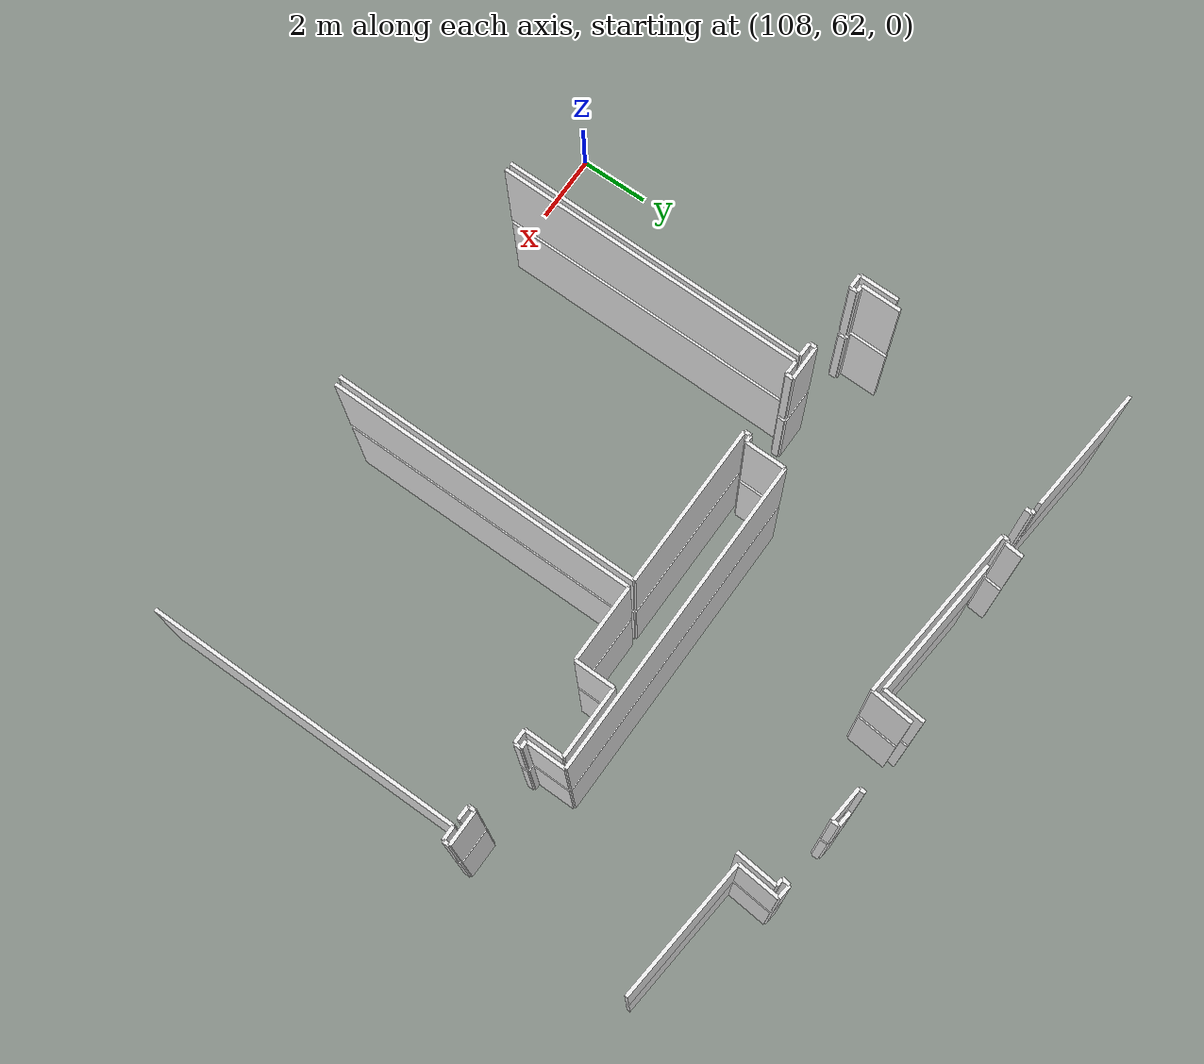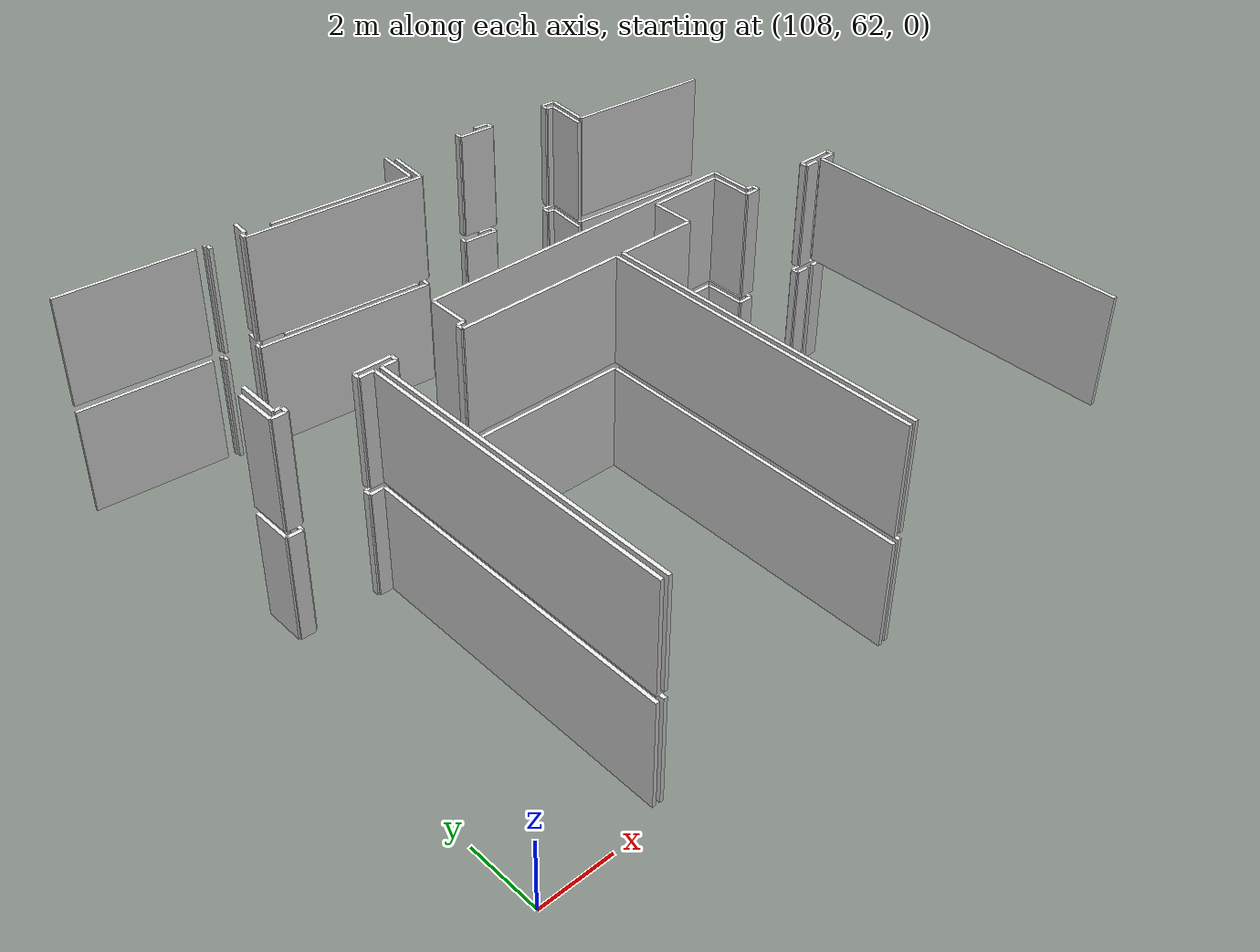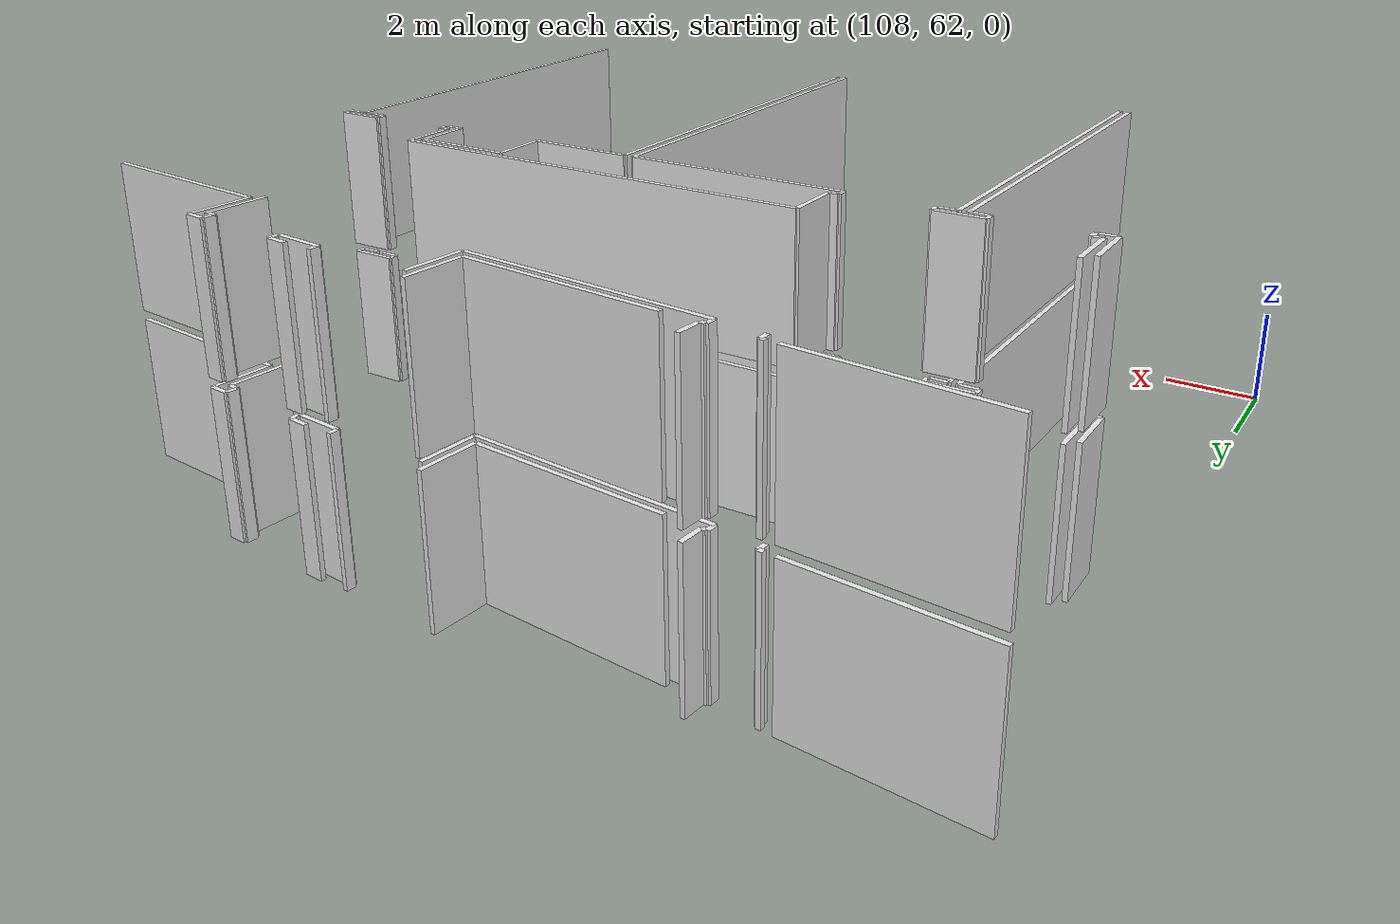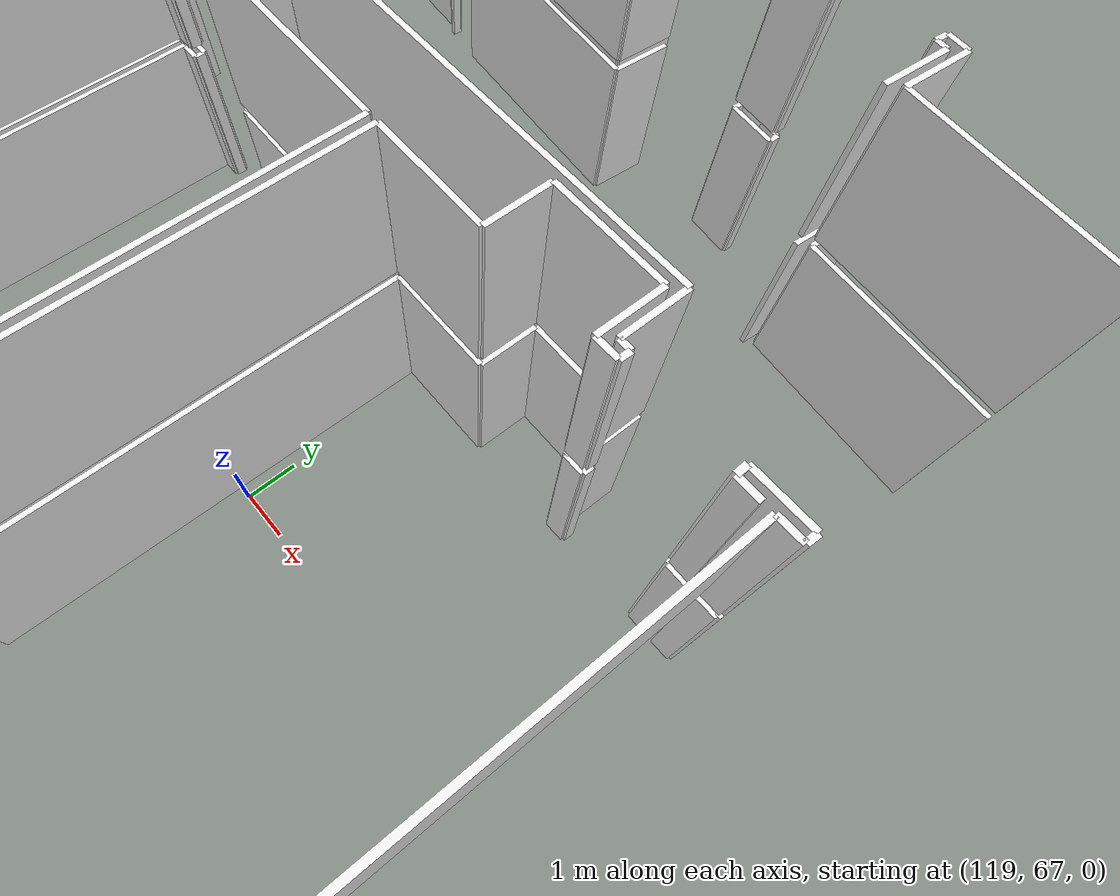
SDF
<sdf version="1.6">
 <world name="default">
  <model name="wall_111.7_78.0_0.0_link">
   <static>true</static>
   <pose>111.6699999999837 77.97500000009313 1.5 0 0 -0.09966865030117082</pose>
   <link name="link">
    <visual name="visual">
     <geometry><box><size>0.10049875616580058 0.1 3</size></box></geometry>
     <material>
      <script><uri>file://media/materials/scripts/gazebo.material</uri><name>Gazebo/White</name></script>
     </material>
    </visual>
   </link>
  </model>
  <model name="wall_112.7_77.9_0.0_link">
   <static>true</static>
   <pose>112.6699999999837 77.875 1.5 0 0 -0.09966865030117082</pose>
   <link name="link">
    <visual name="visual">
     <geometry><box><size>0.10049875616580058 0.1 3</size></box></geometry>
     <material>
      <script><uri>file://media/materials/scripts/gazebo.material</uri><name>Gazebo/White</name></script>
     </material>
    </visual>
   </link>
  </model>
  <model name="wall_112.7_78.1_0.0_link">
   <static>true</static>
   <pose>112.74499999999534 78.12000000011176 1.5 0 0 1.4711276742115245</pose>
   <link name="link">
    <visual name="visual">
     <geometry><box><size>0.502493781060678 0.1 3</size></box></geometry>
     <material>
      <script><uri>file://media/materials/scripts/gazebo.material</uri><name>Gazebo/White</name></script>
     </material>
    </visual>
   </link>
  </model>
  <model name="wall_109.6_78.2_0.0_link">
   <static>true</static>
   <pose>109.61999999999534 78.17999999993481 1.5 0 0 -0.1002217497450038</pose>
   <link name="link">
    <visual name="visual">
     <geometry><box><size>3.5980550300969623 0.1 3</size></box></geometry>
     <material>
      <script><uri>file://media/materials/scripts/gazebo.material</uri><name>Gazebo/White</name></script>
     </material>
    </visual>
   </link>
  </model>
  <model name="wall_120.4_78.3_0.0_link">
   <static>true</static>
   <pose>120.44000000000233 78.31999999983236 1.5 0 0 -0.09966865257760905</pose>
   <link name="link">
    <visual name="visual">
     <geometry><box><size>0.40199502487170996 0.1 3</size></box></geometry>
     <material>
      <script><uri>file://media/materials/scripts/gazebo.material</uri><name>Gazebo/White</name></script>
     </material>
    </visual>
   </link>
  </model>
  <model name="wall_122.6_78.1_0.0_link">
   <static>true</static>
   <pose>122.63500000000931 78.10000000009313 1.5 0 0 -0.10220671819814384</pose>
   <link name="link">
    <visual name="visual">
     <geometry><box><size>0.392045915695951 0.1 3</size></box></geometry>
     <material>
      <script><uri>file://media/materials/scripts/gazebo.material</uri><name>Gazebo/White</name></script>
     </material>
    </visual>
   </link>
  </model>
  <model name="wall_122.8_77.5_0.0_link">
   <static>true</static>
   <pose>122.77000000001863 77.47500000009313 1.5 0 0 -1.6696466488623756</pose>
   <link name="link">
    <visual name="visual">
     <geometry><box><size>1.2159358535337013 0.1 3</size></box></geometry>
     <material>
      <script><uri>file://media/materials/scripts/gazebo.material</uri><name>Gazebo/White</name></script>
     </material>
    </visual>
   </link>
  </model>
  <model name="wall_124.7_76.7_0.0_link">
   <static>true</static>
   <pose>124.68000000002212 76.67000000015832 1.5 0 0 -0.10117618901410476</pose>
   <link name="link">
    <visual name="visual">
     <geometry><box><size>3.9602525171943066 0.1 3</size></box></geometry>
     <material>
      <script><uri>file://media/materials/scripts/gazebo.material</uri><name>Gazebo/White</name></script>
     </material>
    </visual>
   </link>
  </model>
  <model name="wall_115.4_77.6_0.0_link">
   <static>true</static>
   <pose>115.38499999998021 77.5999999998603 1.5 0 0 -0.10092178464365997</pose>
   <link name="link">
    <visual name="visual">
     <geometry><box><size>3.9702015062232627 0.1 3</size></box></geometry>
     <material>
      <script><uri>file://media/materials/scripts/gazebo.material</uri><name>Gazebo/White</name></script>
     </material>
    </visual>
   </link>
  </model>
  <model name="wall_117.4_78.0_0.0_link">
   <static>true</static>
   <pose>117.4199999999837 78.00499999988824 1.5 0 0 1.4719460047274175</pose>
   <link name="link">
    <visual name="visual">
     <geometry><box><size>1.2159358535337013 0.1 3</size></box></geometry>
     <material>
      <script><uri>file://media/materials/scripts/gazebo.material</uri><name>Gazebo/White</name></script>
     </material>
    </visual>
   </link>
  </model>
  <model name="wall_122.6_77.3_0.0_link">
   <static>true</static>
   <pose>122.55999999999767 77.28499999991618 1.5 0 0 1.470295727739453</pose>
   <link name="link">
    <visual name="visual">
     <geometry><box><size>1.1960351164852516 0.1 3</size></box></geometry>
     <material>
      <script><uri>file://media/materials/scripts/gazebo.material</uri><name>Gazebo/White</name></script>
     </material>
    </visual>
   </link>
  </model>
  <model name="wall_122.5_77.9_0.0_link">
   <static>true</static>
   <pose>122.51499999998487 77.88999999989755 1.5 0 0 3.0466409471685547</pose>
   <link name="link">
    <visual name="visual">
     <geometry><box><size>0.21095023111991618 0.1 3</size></box></geometry>
     <material>
      <script><uri>file://media/materials/scripts/gazebo.material</uri><name>Gazebo/White</name></script>
     </material>
    </visual>
   </link>
  </model>
  <model name="wall_122.4_78.0_0.0_link">
   <static>true</static>
   <pose>122.42499999998836 78.01000000000931 1.5 0 0 1.4352686128093959</pose>
   <link name="link">
    <visual name="visual">
     <geometry><box><size>0.22203603331853233 0.1 3</size></box></geometry>
     <material>
      <script><uri>file://media/materials/scripts/gazebo.material</uri><name>Gazebo/White</name></script>
     </material>
    </visual>
   </link>
  </model>
  <model name="wall_120.6_78.2_0.0_link">
   <static>true</static>
   <pose>120.64000000001397 78.19999999995343 1.5 0 0 -1.5707963267948966</pose>
   <link name="link">
    <visual name="visual">
     <geometry><box><size>0.19999999972060323 0.1 3</size></box></geometry>
     <material>
      <script><uri>file://media/materials/scripts/gazebo.material</uri><name>Gazebo/White</name></script>
     </material>
    </visual>
   </link>
  </model>
  <model name="wall_120.1_78.2_0.0_link">
   <static>true</static>
   <pose>120.14500000001863 78.1500000001397 1.5 0 0 3.040924001337901</pose>
   <link name="link">
    <visual name="visual">
     <geometry><box><size>0.9950376877285535 0.1 3</size></box></geometry>
     <material>
      <script><uri>file://media/materials/scripts/gazebo.material</uri><name>Gazebo/White</name></script>
     </material>
    </visual>
   </link>
  </model>
  <model name="wall_119.7_78.3_0.0_link">
   <static>true</static>
   <pose>119.66000000000349 78.29500000015832 1.5 0 0 1.4659193882400832</pose>
   <link name="link">
    <visual name="visual">
     <geometry><box><size>0.19104973168571213 0.1 3</size></box></geometry>
     <material>
      <script><uri>file://media/materials/scripts/gazebo.material</uri><name>Gazebo/White</name></script>
     </material>
    </visual>
   </link>
  </model>
  <model name="wall_117.6_77.8_0.0_link">
   <static>true</static>
   <pose>117.59999999997672 77.78499999991618 1.5 0 0 -1.6712969258503403</pose>
   <link name="link">
    <visual name="visual">
     <geometry><box><size>1.1960351164852516 0.1 3</size></box></geometry>
     <material>
      <script><uri>file://media/materials/scripts/gazebo.material</uri><name>Gazebo/White</name></script>
     </material>
    </visual>
   </link>
  </model>
  <model name="wall_115.1_77.4_0.0_link">
   <static>true</static>
   <pose>115.06999999997788 77.43999999994412 1.5 0 0 3.0407215968685284</pose>
   <link name="link">
    <visual name="visual">
     <geometry><box><size>4.965239168461375 0.1 3</size></box></geometry>
     <material>
      <script><uri>file://media/materials/scripts/gazebo.material</uri><name>Gazebo/White</name></script>
     </material>
    </visual>
   </link>
  </model>
  <model name="wall_112.6_77.8_0.0_link">
   <static>true</static>
   <pose>112.60999999998603 77.78499999991618 1.5 0 0 1.4659193879370842</pose>
   <link name="link">
    <visual name="visual">
     <geometry><box><size>0.19104973169180559 0.1 3</size></box></geometry>
     <material>
      <script><uri>file://media/materials/scripts/gazebo.material</uri><name>Gazebo/White</name></script>
     </material>
    </visual>
   </link>
  </model>
  <model name="wall_111.7_77.9_0.0_link">
   <static>true</static>
   <pose>111.70999999999185 77.875 1.5 0 0 -1.6756732650945534</pose>
   <link name="link">
    <visual name="visual">
     <geometry><box><size>0.19104973214881482 0.1 3</size></box></geometry>
     <material>
      <script><uri>file://media/materials/scripts/gazebo.material</uri><name>Gazebo/White</name></script>
     </material>
    </visual>
   </link>
  </model>
  <model name="wall_109.1_72.0_0.0_link">
   <static>true</static>
   <pose>109.14000000001397 71.95499999984168 1.5 0 0 -1.5881858781018272</pose>
   <link name="link">
    <visual name="visual">
     <geometry><box><size>1.1501738998023476 0.1 3</size></box></geometry>
     <material>
      <script><uri>file://media/materials/scripts/gazebo.material</uri><name>Gazebo/White</name></script>
     </material>
    </visual>
   </link>
  </model>
  <model name="wall_109.2_71.4_0.0_link">
   <static>true</static>
   <pose>109.23000000001048 71.37999999988824 1.5 0 0 0.0</pose>
   <link name="link">
    <visual name="visual">
     <geometry><box><size>0.20000000001164153 0.1 3</size></box></geometry>
     <material>
      <script><uri>file://media/materials/scripts/gazebo.material</uri><name>Gazebo/White</name></script>
     </material>
    </visual>
   </link>
  </model>
  <model name="wall_109.3_71.3_0.0_link">
   <static>true</static>
   <pose>109.3300000000163 71.28000000002794 1.5 0 0 -1.5707963267948966</pose>
   <link name="link">
    <visual name="visual">
     <geometry><box><size>0.19999999972060323 0.1 3</size></box></geometry>
     <material>
      <script><uri>file://media/materials/scripts/gazebo.material</uri><name>Gazebo/White</name></script>
     </material>
    </visual>
   </link>
  </model>
  <model name="wall_111.1_71.3_0.0_link">
   <static>true</static>
   <pose>111.14000000001397 71.25500000012107 1.5 0 0 1.5707963267948966</pose>
   <link name="link">
    <visual name="visual">
     <geometry><box><size>0.18999999994412065 0.1 3</size></box></geometry>
     <material>
      <script><uri>file://media/materials/scripts/gazebo.material</uri><name>Gazebo/White</name></script>
     </material>
    </visual>
   </link>
  </model>
  <model name="wall_111.6_71.3_0.0_link">
   <static>true</static>
   <pose>111.64000000001397 71.34499999997206 1.5 0 0 -0.009999666928784895</pose>
   <link name="link">
    <visual name="visual">
     <geometry><box><size>1.0000499987524838 0.1 3</size></box></geometry>
     <material>
      <script><uri>file://media/materials/scripts/gazebo.material</uri><name>Gazebo/White</name></script>
     </material>
    </visual>
   </link>
  </model>
  <model name="wall_112.1_71.2_0.0_link">
   <static>true</static>
   <pose>112.13500000000931 71.23999999999069 1.5 0 0 -1.6207547226329644</pose>
   <link name="link">
    <visual name="visual">
     <geometry><box><size>0.20024984366642476 0.1 3</size></box></geometry>
     <material>
      <script><uri>file://media/materials/scripts/gazebo.material</uri><name>Gazebo/White</name></script>
     </material>
    </visual>
   </link>
  </model>
  <model name="wall_113.9_71.2_0.0_link">
   <static>true</static>
   <pose>113.94000000000233 71.21500000008382 1.5 0 0 1.5707963267948966</pose>
   <link name="link">
    <visual name="visual">
     <geometry><box><size>0.18999999994412065 0.1 3</size></box></geometry>
     <material>
      <script><uri>file://media/materials/scripts/gazebo.material</uri><name>Gazebo/White</name></script>
     </material>
    </visual>
   </link>
  </model>
  <model name="wall_114.0_71.3_0.0_link">
   <static>true</static>
   <pose>114.04000000000815 71.31000000005588 1.5 0 0 0.0</pose>
   <link name="link">
    <visual name="visual">
     <geometry><box><size>0.20000000001164153 0.1 3</size></box></geometry>
     <material>
      <script><uri>file://media/materials/scripts/gazebo.material</uri><name>Gazebo/White</name></script>
     </material>
    </visual>
   </link>
  </model>
  <model name="wall_114.1_71.9_0.0_link">
   <static>true</static>
   <pose>114.14999999999418 71.88500000000931 1.5 0 0 1.553406775538566</pose>
   <link name="link">
    <visual name="visual">
     <geometry><box><size>1.1501738998013356 0.1 3</size></box></geometry>
     <material>
      <script><uri>file://media/materials/scripts/gazebo.material</uri><name>Gazebo/White</name></script>
     </material>
    </visual>
   </link>
  </model>
  <model name="wall_118.7_72.4_0.0_link">
   <static>true</static>
   <pose>118.6699999999837 72.39500000001863 1.5 0 0 -0.01441141905839594</pose>
   <link name="link">
    <visual name="visual">
     <geometry><box><size>9.020936758469542 0.1 3</size></box></geometry>
     <material>
      <script><uri>file://media/materials/scripts/gazebo.material</uri><name>Gazebo/White</name></script>
     </material>
    </visual>
   </link>
  </model>
  <model name="wall_123.2_71.8_0.0_link">
   <static>true</static>
   <pose>123.1699999999837 71.76000000000931 1.5 0 0 -1.5883383868666272</pose>
   <link name="link">
    <visual name="visual">
     <geometry><box><size>1.1401754252298297 0.1 3</size></box></geometry>
     <material>
      <script><uri>file://media/materials/scripts/gazebo.material</uri><name>Gazebo/White</name></script>
     </material>
    </visual>
   </link>
  </model>
  <model name="wall_123.3_71.2_0.0_link">
   <static>true</static>
   <pose>123.26499999998487 71.18999999994412 1.5 0 0 0.0</pose>
   <link name="link">
    <visual name="visual">
     <geometry><box><size>0.21000000002095476 0.1 3</size></box></geometry>
     <material>
      <script><uri>file://media/materials/scripts/gazebo.material</uri><name>Gazebo/White</name></script>
     </material>
    </visual>
   </link>
  </model>
  <model name="wall_123.4_71.1_0.0_link">
   <static>true</static>
   <pose>123.36499999999069 71.09499999997206 1.5 0 0 -1.6233793884701562</pose>
   <link name="link">
    <visual name="visual">
     <geometry><box><size>0.19026297584909185 0.1 3</size></box></geometry>
     <material>
      <script><uri>file://media/materials/scripts/gazebo.material</uri><name>Gazebo/White</name></script>
     </material>
    </visual>
   </link>
  </model>
  <model name="wall_125.2_71.1_0.0_link">
   <static>true</static>
   <pose>125.1699999999837 71.07499999995343 1.5 0 0 1.5707963267948966</pose>
   <link name="link">
    <visual name="visual">
     <geometry><box><size>0.18999999994412065 0.1 3</size></box></geometry>
     <material>
      <script><uri>file://media/materials/scripts/gazebo.material</uri><name>Gazebo/White</name></script>
     </material>
    </visual>
   </link>
  </model>
  <model name="wall_125.7_71.2_0.0_link">
   <static>true</static>
   <pose>125.66499999997905 71.16500000003725 1.5 0 0 -0.010100666359664784</pose>
   <link name="link">
    <visual name="visual">
     <geometry><box><size>0.9900505037507377 0.1 3</size></box></geometry>
     <material>
      <script><uri>file://media/materials/scripts/gazebo.material</uri><name>Gazebo/White</name></script>
     </material>
    </visual>
   </link>
  </model>
  <model name="wall_126.2_71.1_0.0_link">
   <static>true</static>
   <pose>126.15499999999884 71.06500000017695 1.5 0 0 -1.6233793881646463</pose>
   <link name="link">
    <visual name="visual">
     <geometry><box><size>0.19026297584603252 0.1 3</size></box></geometry>
     <material>
      <script><uri>file://media/materials/scripts/gazebo.material</uri><name>Gazebo/White</name></script>
     </material>
    </visual>
   </link>
  </model>
  <model name="wall_118.5_66.6_0.0_link">
   <static>true</static>
   <pose>118.47999999998137 66.61999999987893 1.5 0 0 1.557253136818869</pose>
   <link name="link">
    <visual name="visual">
     <geometry><box><size>8.860812603688696 0.1 3</size></box></geometry>
     <material>
      <script><uri>file://media/materials/scripts/gazebo.material</uri><name>Gazebo/White</name></script>
     </material>
    </visual>
   </link>
  </model>
  <model name="wall_116.2_71.1_0.0_link">
   <static>true</static>
   <pose>116.23999999999069 71.08499999996275 1.5 0 0 3.1263764366827713</pose>
   <link name="link">
    <visual name="visual">
     <geometry><box><size>4.60053257784656 0.1 3</size></box></geometry>
     <material>
      <script><uri>file://media/materials/scripts/gazebo.material</uri><name>Gazebo/White</name></script>
     </material>
    </visual>
   </link>
  </model>
  <model name="wall_111.9_71.1_0.0_link">
   <static>true</static>
   <pose>111.92999999999302 71.14500000001863 1.5 0 0 3.116597860530772</pose>
   <link name="link">
    <visual name="visual">
     <geometry><box><size>0.40012498049254075 0.1 3</size></box></geometry>
     <material>
      <script><uri>file://media/materials/scripts/gazebo.material</uri><name>Gazebo/White</name></script>
     </material>
    </visual>
   </link>
  </model>
  <model name="wall_111.7_66.7_0.0_link">
   <static>true</static>
   <pose>111.6699999999837 66.71999999997206 1.5 0 0 -1.5843395167709244</pose>
   <link name="link">
    <visual name="visual">
     <geometry><box><size>8.860812603688696 0.1 3</size></box></geometry>
     <material>
      <script><uri>file://media/materials/scripts/gazebo.material</uri><name>Gazebo/White</name></script>
     </material>
    </visual>
   </link>
  </model>
  <model name="wall_125.4_71.0_0.0_link">
   <static>true</static>
   <pose>125.36499999999069 70.97500000009313 1.5 0 0 3.115957245641779</pose>
   <link name="link">
    <visual name="visual">
     <geometry><box><size>0.3901281840708591 0.1 3</size></box></geometry>
     <material>
      <script><uri>file://media/materials/scripts/gazebo.material</uri><name>Gazebo/White</name></script>
     </material>
    </visual>
   </link>
  </model>
  <model name="wall_123.2_71.0_0.0_link">
   <static>true</static>
   <pose>123.16000000000349 71.0 1.5 0 0 3.141592653589793</pose>
   <link name="link">
    <visual name="visual">
     <geometry><box><size>0.3999999999650754 0.1 3</size></box></geometry>
     <material>
      <script><uri>file://media/materials/scripts/gazebo.material</uri><name>Gazebo/White</name></script>
     </material>
    </visual>
   </link>
  </model>
  <model name="wall_123.0_71.6_0.0_link">
   <static>true</static>
   <pose>122.97000000000116 71.56499999994412 1.5 0 0 1.553099059570393</pose>
   <link name="link">
    <visual name="visual">
     <geometry><box><size>1.130176977179168 0.1 3</size></box></geometry>
     <material>
      <script><uri>file://media/materials/scripts/gazebo.material</uri><name>Gazebo/White</name></script>
     </material>
    </visual>
   </link>
  </model>
  <model name="wall_122.0_72.1_0.0_link">
   <static>true</static>
   <pose>121.96499999999651 72.14500000001863 1.5 0 0 3.12681540405365</pose>
   <link name="link">
    <visual name="visual">
     <geometry><box><size>2.0302216627483705 0.1 3</size></box></geometry>
     <material>
      <script><uri>file://media/materials/scripts/gazebo.material</uri><name>Gazebo/White</name></script>
     </material>
    </visual>
   </link>
  </model>
  <model name="wall_120.9_71.6_0.0_link">
   <static>true</static>
   <pose>120.94000000000233 71.59000000008382 1.5 0 0 -1.5883383868666272</pose>
   <link name="link">
    <visual name="visual">
     <geometry><box><size>1.1401754252298297 0.1 3</size></box></geometry>
     <material>
      <script><uri>file://media/materials/scripts/gazebo.material</uri><name>Gazebo/White</name></script>
     </material>
    </visual>
   </link>
  </model>
  <model name="wall_119.8_71.0_0.0_link">
   <static>true</static>
   <pose>119.83999999999651 71.03499999991618 1.5 0 0 3.1278320544015297</pose>
   <link name="link">
    <visual name="visual">
     <geometry><box><size>2.1802064122365232 0.1 3</size></box></geometry>
     <material>
      <script><uri>file://media/materials/scripts/gazebo.material</uri><name>Gazebo/White</name></script>
     </material>
    </visual>
   </link>
  </model>
  <model name="wall_118.7_66.6_0.0_link">
   <static>true</static>
   <pose>118.69000000000233 66.62999999988824 1.5 0 0 -1.5843701537129677</pose>
   <link name="link">
    <visual name="visual">
     <geometry><box><size>8.840814441971077 0.1 3</size></box></geometry>
     <material>
      <script><uri>file://media/materials/scripts/gazebo.material</uri><name>Gazebo/White</name></script>
     </material>
    </visual>
   </link>
  </model>
  <model name="wall_125.9_71.0_0.0_link">
   <static>true</static>
   <pose>125.94500000000698 70.97000000020489 1.5 0 0 3.141592653589793</pose>
   <link name="link">
    <visual name="visual">
     <geometry><box><size>0.4100000000325963 0.1 3</size></box></geometry>
     <material>
      <script><uri>file://media/materials/scripts/gazebo.material</uri><name>Gazebo/White</name></script>
     </material>
    </visual>
   </link>
  </model>
  <model name="wall_111.5_66.7_0.0_link">
   <static>true</static>
   <pose>111.47499999997672 66.7249999998603 1.5 0 0 1.5561081176441238</pose>
   <link name="link">
    <visual name="visual">
     <geometry><box><size>8.850954750853134 0.1 3</size></box></geometry>
     <material>
      <script><uri>file://media/materials/scripts/gazebo.material</uri><name>Gazebo/White</name></script>
     </material>
    </visual>
   </link>
  </model>
  <model name="wall_111.3_71.2_0.0_link">
   <static>true</static>
   <pose>111.33999999999651 71.15500000002794 1.5 0 0 3.11659785936371</pose>
   <link name="link">
    <visual name="visual">
     <geometry><box><size>0.40012498044598915 0.1 3</size></box></geometry>
     <material>
      <script><uri>file://media/materials/scripts/gazebo.material</uri><name>Gazebo/White</name></script>
     </material>
    </visual>
   </link>
  </model>
  <model name="wall_109.1_71.2_0.0_link">
   <static>true</static>
   <pose>109.13000000000466 71.18500000005588 1.5 0 0 3.116597860530772</pose>
   <link name="link">
    <visual name="visual">
     <geometry><box><size>0.40012498049254075 0.1 3</size></box></geometry>
     <material>
      <script><uri>file://media/materials/scripts/gazebo.material</uri><name>Gazebo/White</name></script>
     </material>
    </visual>
   </link>
  </model>
  <model name="wall_108.9_71.8_0.0_link">
   <static>true</static>
   <pose>108.93499999999767 71.76000000000931 1.5 0 0 1.562024621943288</pose>
   <link name="link">
    <visual name="visual">
     <geometry><box><size>1.1400438589359028 0.1 3</size></box></geometry>
     <material>
      <script><uri>file://media/materials/scripts/gazebo.material</uri><name>Gazebo/White</name></script>
     </material>
    </visual>
   </link>
  </model>
  <model name="wall_111.7_78.0_3.2_link">
   <static>true</static>
   <pose>111.6699999999837 77.97500000009313 4.7 0 0 -0.09966865030117082</pose>
   <link name="link">
    <visual name="visual">
     <geometry><box><size>0.10049875616580058 0.1 3</size></box></geometry>
     <material>
      <script><uri>file://media/materials/scripts/gazebo.material</uri><name>Gazebo/White</name></script>
     </material>
    </visual>
   </link>
  </model>
  <model name="wall_112.7_77.9_3.2_link">
   <static>true</static>
   <pose>112.6699999999837 77.875 4.7 0 0 -0.09966865030117082</pose>
   <link name="link">
    <visual name="visual">
     <geometry><box><size>0.10049875616580058 0.1 3</size></box></geometry>
     <material>
      <script><uri>file://media/materials/scripts/gazebo.material</uri><name>Gazebo/White</name></script>
     </material>
    </visual>
   </link>
  </model>
  <model name="wall_112.7_78.1_3.2_link">
   <static>true</static>
   <pose>112.74499999999534 78.12000000011176 4.7 0 0 1.4711276742115245</pose>
   <link name="link">
    <visual name="visual">
     <geometry><box><size>0.502493781060678 0.1 3</size></box></geometry>
     <material>
      <script><uri>file://media/materials/scripts/gazebo.material</uri><name>Gazebo/White</name></script>
     </material>
    </visual>
   </link>
  </model>
  <model name="wall_109.6_78.2_3.2_link">
   <static>true</static>
   <pose>109.61999999999534 78.17999999993481 4.7 0 0 -0.1002217497450038</pose>
   <link name="link">
    <visual name="visual">
     <geometry><box><size>3.5980550300969623 0.1 3</size></box></geometry>
     <material>
      <script><uri>file://media/materials/scripts/gazebo.material</uri><name>Gazebo/White</name></script>
     </material>
    </visual>
   </link>
  </model>
  <model name="wall_120.4_78.3_3.2_link">
   <static>true</static>
   <pose>120.44000000000233 78.31999999983236 4.7 0 0 -0.09966865257760905</pose>
   <link name="link">
    <visual name="visual">
     <geometry><box><size>0.40199502487170996 0.1 3</size></box></geometry>
     <material>
      <script><uri>file://media/materials/scripts/gazebo.material</uri><name>Gazebo/White</name></script>
     </material>
    </visual>
   </link>
  </model>
  <model name="wall_122.6_78.1_3.2_link">
   <static>true</static>
   <pose>122.63500000000931 78.10000000009313 4.7 0 0 -0.10220671819814384</pose>
   <link name="link">
    <visual name="visual">
     <geometry><box><size>0.392045915695951 0.1 3</size></box></geometry>
     <material>
      <script><uri>file://media/materials/scripts/gazebo.material</uri><name>Gazebo/White</name></script>
     </material>
    </visual>
   </link>
  </model>
  <model name="wall_122.8_77.5_3.2_link">
   <static>true</static>
   <pose>122.77000000001863 77.47500000009313 4.7 0 0 -1.6696466488623756</pose>
   <link name="link">
    <visual name="visual">
     <geometry><box><size>1.2159358535337013 0.1 3</size></box></geometry>
     <material>
      <script><uri>file://media/materials/scripts/gazebo.material</uri><name>Gazebo/White</name></script>
     </material>
    </visual>
   </link>
  </model>
  <model name="wall_124.7_76.7_3.2_link">
   <static>true</static>
   <pose>124.68000000002212 76.67000000015832 4.7 0 0 -0.10117618901410476</pose>
   <link name="link">
    <visual name="visual">
     <geometry><box><size>3.9602525171943066 0.1 3</size></box></geometry>
     <material>
      <script><uri>file://media/materials/scripts/gazebo.material</uri><name>Gazebo/White</name></script>
     </material>
    </visual>
   </link>
  </model>
  <model name="wall_115.4_77.6_3.2_link">
   <static>true</static>
   <pose>115.38499999998021 77.5999999998603 4.7 0 0 -0.10092178464365997</pose>
   <link name="link">
    <visual name="visual">
     <geometry><box><size>3.9702015062232627 0.1 3</size></box></geometry>
     <material>
      <script><uri>file://media/materials/scripts/gazebo.material</uri><name>Gazebo/White</name></script>
     </material>
    </visual>
   </link>
  </model>
  <model name="wall_117.4_78.0_3.2_link">
   <static>true</static>
   <pose>117.4199999999837 78.00499999988824 4.7 0 0 1.4719460047274175</pose>
   <link name="link">
    <visual name="visual">
     <geometry><box><size>1.2159358535337013 0.1 3</size></box></geometry>
     <material>
      <script><uri>file://media/materials/scripts/gazebo.material</uri><name>Gazebo/White</name></script>
     </material>
    </visual>
   </link>
  </model>
  <model name="wall_122.6_77.3_3.2_link">
   <static>true</static>
   <pose>122.55999999999767 77.28499999991618 4.7 0 0 1.470295727739453</pose>
   <link name="link">
    <visual name="visual">
     <geometry><box><size>1.1960351164852516 0.1 3</size></box></geometry>
     <material>
      <script><uri>file://media/materials/scripts/gazebo.material</uri><name>Gazebo/White</name></script>
     </material>
    </visual>
   </link>
  </model>
  <model name="wall_122.5_77.9_3.2_link">
   <static>true</static>
   <pose>122.51499999998487 77.88999999989755 4.7 0 0 3.0466409471685547</pose>
   <link name="link">
    <visual name="visual">
     <geometry><box><size>0.21095023111991618 0.1 3</size></box></geometry>
     <material>
      <script><uri>file://media/materials/scripts/gazebo.material</uri><name>Gazebo/White</name></script>
     </material>
    </visual>
   </link>
  </model>
  <model name="wall_122.4_78.0_3.2_link">
   <static>true</static>
   <pose>122.42499999998836 78.01000000000931 4.7 0 0 1.4352686128093959</pose>
   <link name="link">
    <visual name="visual">
     <geometry><box><size>0.22203603331853233 0.1 3</size></box></geometry>
     <material>
      <script><uri>file://media/materials/scripts/gazebo.material</uri><name>Gazebo/White</name></script>
     </material>
    </visual>
   </link>
  </model>
  <model name="wall_120.6_78.2_3.2_link">
   <static>true</static>
   <pose>120.64000000001397 78.19999999995343 4.7 0 0 -1.5707963267948966</pose>
   <link name="link">
    <visual name="visual">
     <geometry><box><size>0.19999999972060323 0.1 3</size></box></geometry>
     <material>
      <script><uri>file://media/materials/scripts/gazebo.material</uri><name>Gazebo/White</name></script>
     </material>
    </visual>
   </link>
  </model>
  <model name="wall_120.1_78.2_3.2_link">
   <static>true</static>
   <pose>120.14500000001863 78.1500000001397 4.7 0 0 3.040924001337901</pose>
   <link name="link">
    <visual name="visual">
     <geometry><box><size>0.9950376877285535 0.1 3</size></box></geometry>
     <material>
      <script><uri>file://media/materials/scripts/gazebo.material</uri><name>Gazebo/White</name></script>
     </material>
    </visual>
   </link>
  </model>
  <model name="wall_119.7_78.3_3.2_link">
   <static>true</static>
   <pose>119.66000000000349 78.29500000015832 4.7 0 0 1.4659193882400832</pose>
   <link name="link">
    <visual name="visual">
     <geometry><box><size>0.19104973168571213 0.1 3</size></box></geometry>
     <material>
      <script><uri>file://media/materials/scripts/gazebo.material</uri><name>Gazebo/White</name></script>
     </material>
    </visual>
   </link>
  </model>
  <model name="wall_117.6_77.8_3.2_link">
   <static>true</static>
   <pose>117.59999999997672 77.78499999991618 4.7 0 0 -1.6712969258503403</pose>
   <link name="link">
    <visual name="visual">
     <geometry><box><size>1.1960351164852516 0.1 3</size></box></geometry>
     <material>
      <script><uri>file://media/materials/scripts/gazebo.material</uri><name>Gazebo/White</name></script>
     </material>
    </visual>
   </link>
  </model>
  <model name="wall_115.1_77.4_3.2_link">
   <static>true</static>
   <pose>115.06999999997788 77.43999999994412 4.7 0 0 3.0407215968685284</pose>
   <link name="link">
    <visual name="visual">
     <geometry><box><size>4.965239168461375 0.1 3</size></box></geometry>
     <material>
      <script><uri>file://media/materials/scripts/gazebo.material</uri><name>Gazebo/White</name></script>
     </material>
    </visual>
   </link>
  </model>
  <model name="wall_112.6_77.8_3.2_link">
   <static>true</static>
   <pose>112.60999999998603 77.78499999991618 4.7 0 0 1.4659193879370842</pose>
   <link name="link">
    <visual name="visual">
     <geometry><box><size>0.19104973169180559 0.1 3</size></box></geometry>
     <material>
      <script><uri>file://media/materials/scripts/gazebo.material</uri><name>Gazebo/White</name></script>
     </material>
    </visual>
   </link>
  </model>
  <model name="wall_111.7_77.9_3.2_link">
   <static>true</static>
   <pose>111.70999999999185 77.875 4.7 0 0 -1.6756732650945534</pose>
   <link name="link">
    <visual name="visual">
     <geometry><box><size>0.19104973214881482 0.1 3</size></box></geometry>
     <material>
      <script><uri>file://media/materials/scripts/gazebo.material</uri><name>Gazebo/White</name></script>
     </material>
    </visual>
   </link>
  </model>
  <model name="wall_109.1_72.0_3.2_link">
   <static>true</static>
   <pose>109.14000000001397 71.95499999984168 4.7 0 0 -1.5881858781018272</pose>
   <link name="link">
    <visual name="visual">
     <geometry><box><size>1.1501738998023476 0.1 3</size></box></geometry>
     <material>
      <script><uri>file://media/materials/scripts/gazebo.material</uri><name>Gazebo/White</name></script>
     </material>
    </visual>
   </link>
  </model>
  <model name="wall_109.2_71.4_3.2_link">
   <static>true</static>
   <pose>109.23000000001048 71.37999999988824 4.7 0 0 0.0</pose>
   <link name="link">
    <visual name="visual">
     <geometry><box><size>0.20000000001164153 0.1 3</size></box></geometry>
     <material>
      <script><uri>file://media/materials/scripts/gazebo.material</uri><name>Gazebo/White</name></script>
     </material>
    </visual>
   </link>
  </model>
  <model name="wall_109.3_71.3_3.2_link">
   <static>true</static>
   <pose>109.3300000000163 71.28000000002794 4.7 0 0 -1.5707963267948966</pose>
   <link name="link">
    <visual name="visual">
     <geometry><box><size>0.19999999972060323 0.1 3</size></box></geometry>
     <material>
      <script><uri>file://media/materials/scripts/gazebo.material</uri><name>Gazebo/White</name></script>
     </material>
    </visual>
   </link>
  </model>
  <model name="wall_111.1_71.3_3.2_link">
   <static>true</static>
   <pose>111.14000000001397 71.25500000012107 4.7 0 0 1.5707963267948966</pose>
   <link name="link">
    <visual name="visual">
     <geometry><box><size>0.18999999994412065 0.1 3</size></box></geometry>
     <material>
      <script><uri>file://media/materials/scripts/gazebo.material</uri><name>Gazebo/White</name></script>
     </material>
    </visual>
   </link>
  </model>
  <model name="wall_111.6_71.3_3.2_link">
   <static>true</static>
   <pose>111.64000000001397 71.34499999997206 4.7 0 0 -0.009999666928784895</pose>
   <link name="link">
    <visual name="visual">
     <geometry><box><size>1.0000499987524838 0.1 3</size></box></geometry>
     <material>
      <script><uri>file://media/materials/scripts/gazebo.material</uri><name>Gazebo/White</name></script>
     </material>
    </visual>
   </link>
  </model>
  <model name="wall_112.1_71.2_3.2_link">
   <static>true</static>
   <pose>112.13500000000931 71.23999999999069 4.7 0 0 -1.6207547226329644</pose>
   <link name="link">
    <visual name="visual">
     <geometry><box><size>0.20024984366642476 0.1 3</size></box></geometry>
     <material>
      <script><uri>file://media/materials/scripts/gazebo.material</uri><name>Gazebo/White</name></script>
     </material>
    </visual>
   </link>
  </model>
  <model name="wall_113.9_71.2_3.2_link">
   <static>true</static>
   <pose>113.94000000000233 71.21500000008382 4.7 0 0 1.5707963267948966</pose>
   <link name="link">
    <visual name="visual">
     <geometry><box><size>0.18999999994412065 0.1 3</size></box></geometry>
     <material>
      <script><uri>file://media/materials/scripts/gazebo.material</uri><name>Gazebo/White</name></script>
     </material>
    </visual>
   </link>
  </model>
  <model name="wall_114.0_71.3_3.2_link">
   <static>true</static>
   <pose>114.04000000000815 71.31000000005588 4.7 0 0 0.0</pose>
   <link name="link">
    <visual name="visual">
     <geometry><box><size>0.20000000001164153 0.1 3</size></box></geometry>
     <material>
      <script><uri>file://media/materials/scripts/gazebo.material</uri><name>Gazebo/White</name></script>
     </material>
    </visual>
   </link>
  </model>
  <model name="wall_114.1_71.9_3.2_link">
   <static>true</static>
   <pose>114.14999999999418 71.88500000000931 4.7 0 0 1.553406775538566</pose>
   <link name="link">
    <visual name="visual">
     <geometry><box><size>1.1501738998013356 0.1 3</size></box></geometry>
     <material>
      <script><uri>file://media/materials/scripts/gazebo.material</uri><name>Gazebo/White</name></script>
     </material>
    </visual>
   </link>
  </model>
  <model name="wall_118.7_72.4_3.2_link">
   <static>true</static>
   <pose>118.6699999999837 72.39500000001863 4.7 0 0 -0.01441141905839594</pose>
   <link name="link">
    <visual name="visual">
     <geometry><box><size>9.020936758469542 0.1 3</size></box></geometry>
     <material>
      <script><uri>file://media/materials/scripts/gazebo.material</uri><name>Gazebo/White</name></script>
     </material>
    </visual>
   </link>
  </model>
  <model name="wall_123.2_71.8_3.2_link">
   <static>true</static>
   <pose>123.1699999999837 71.76000000000931 4.7 0 0 -1.5883383868666272</pose>
   <link name="link">
    <visual name="visual">
     <geometry><box><size>1.1401754252298297 0.1 3</size></box></geometry>
     <material>
      <script><uri>file://media/materials/scripts/gazebo.material</uri><name>Gazebo/White</name></script>
     </material>
    </visual>
   </link>
  </model>
  <model name="wall_123.3_71.2_3.2_link">
   <static>true</static>
   <pose>123.26499999998487 71.18999999994412 4.7 0 0 0.0</pose>
   <link name="link">
    <visual name="visual">
     <geometry><box><size>0.21000000002095476 0.1 3</size></box></geometry>
     <material>
      <script><uri>file://media/materials/scripts/gazebo.material</uri><name>Gazebo/White</name></script>
     </material>
    </visual>
   </link>
  </model>
  <model name="wall_123.4_71.1_3.2_link">
   <static>true</static>
   <pose>123.36499999999069 71.09499999997206 4.7 0 0 -1.6233793884701562</pose>
   <link name="link">
    <visual name="visual">
     <geometry><box><size>0.19026297584909185 0.1 3</size></box></geometry>
     <material>
      <script><uri>file://media/materials/scripts/gazebo.material</uri><name>Gazebo/White</name></script>
     </material>
    </visual>
   </link>
  </model>
  <model name="wall_125.2_71.1_3.2_link">
   <static>true</static>
   <pose>125.1699999999837 71.07499999995343 4.7 0 0 1.5707963267948966</pose>
   <link name="link">
    <visual name="visual">
     <geometry><box><size>0.18999999994412065 0.1 3</size></box></geometry>
     <material>
      <script><uri>file://media/materials/scripts/gazebo.material</uri><name>Gazebo/White</name></script>
     </material>
    </visual>
   </link>
  </model>
  <model name="wall_125.7_71.2_3.2_link">
   <static>true</static>
   <pose>125.66499999997905 71.16500000003725 4.7 0 0 -0.010100666359664784</pose>
   <link name="link">
    <visual name="visual">
     <geometry><box><size>0.9900505037507377 0.1 3</size></box></geometry>
     <material>
      <script><uri>file://media/materials/scripts/gazebo.material</uri><name>Gazebo/White</name></script>
     </material>
    </visual>
   </link>
  </model>
  <model name="wall_126.2_71.1_3.2_link">
   <static>true</static>
   <pose>126.15499999999884 71.06500000017695 4.7 0 0 -1.6233793881646463</pose>
   <link name="link">
    <visual name="visual">
     <geometry><box><size>0.19026297584603252 0.1 3</size></box></geometry>
     <material>
      <script><uri>file://media/materials/scripts/gazebo.material</uri><name>Gazebo/White</name></script>
     </material>
    </visual>
   </link>
  </model>
  <model name="wall_118.5_66.6_3.2_link">
   <static>true</static>
   <pose>118.47999999998137 66.61999999987893 4.7 0 0 1.557253136818869</pose>
   <link name="link">
    <visual name="visual">
     <geometry><box><size>8.860812603688696 0.1 3</size></box></geometry>
     <material>
      <script><uri>file://media/materials/scripts/gazebo.material</uri><name>Gazebo/White</name></script>
     </material>
    </visual>
   </link>
  </model>
  <model name="wall_116.2_71.1_3.2_link">
   <static>true</static>
   <pose>116.23999999999069 71.08499999996275 4.7 0 0 3.1263764366827713</pose>
   <link name="link">
    <visual name="visual">
     <geometry><box><size>4.60053257784656 0.1 3</size></box></geometry>
     <material>
      <script><uri>file://media/materials/scripts/gazebo.material</uri><name>Gazebo/White</name></script>
     </material>
    </visual>
   </link>
  </model>
  <model name="wall_111.9_71.1_3.2_link">
   <static>true</static>
   <pose>111.92999999999302 71.14500000001863 4.7 0 0 3.116597860530772</pose>
   <link name="link">
    <visual name="visual">
     <geometry><box><size>0.40012498049254075 0.1 3</size></box></geometry>
     <material>
      <script><uri>file://media/materials/scripts/gazebo.material</uri><name>Gazebo/White</name></script>
     </material>
    </visual>
   </link>
  </model>
  <model name="wall_111.7_66.7_3.2_link">
   <static>true</static>
   <pose>111.6699999999837 66.71999999997206 4.7 0 0 -1.5843395167709244</pose>
   <link name="link">
    <visual name="visual">
     <geometry><box><size>8.860812603688696 0.1 3</size></box></geometry>
     <material>
      <script><uri>file://media/materials/scripts/gazebo.material</uri><name>Gazebo/White</name></script>
     </material>
    </visual>
   </link>
  </model>
  <model name="wall_125.4_71.0_3.2_link">
   <static>true</static>
   <pose>125.36499999999069 70.97500000009313 4.7 0 0 3.115957245641779</pose>
   <link name="link">
    <visual name="visual">
     <geometry><box><size>0.3901281840708591 0.1 3</size></box></geometry>
     <material>
      <script><uri>file://media/materials/scripts/gazebo.material</uri><name>Gazebo/White</name></script>
     </material>
    </visual>
   </link>
  </model>
  <model name="wall_123.2_71.0_3.2_link">
   <static>true</static>
   <pose>123.16000000000349 71.0 4.7 0 0 3.141592653589793</pose>
   <link name="link">
    <visual name="visual">
     <geometry><box><size>0.3999999999650754 0.1 3</size></box></geometry>
     <material>
      <script><uri>file://media/materials/scripts/gazebo.material</uri><name>Gazebo/White</name></script>
     </material>
    </visual>
   </link>
  </model>
  <model name="wall_123.0_71.6_3.2_link">
   <static>true</static>
   <pose>122.97000000000116 71.56499999994412 4.7 0 0 1.553099059570393</pose>
   <link name="link">
    <visual name="visual">
     <geometry><box><size>1.130176977179168 0.1 3</size></box></geometry>
     <material>
      <script><uri>file://media/materials/scripts/gazebo.material</uri><name>Gazebo/White</name></script>
     </material>
    </visual>
   </link>
  </model>
  <model name="wall_122.0_72.1_3.2_link">
   <static>true</static>
   <pose>121.96499999999651 72.14500000001863 4.7 0 0 3.12681540405365</pose>
   <link name="link">
    <visual name="visual">
     <geometry><box><size>2.0302216627483705 0.1 3</size></box></geometry>
     <material>
      <script><uri>file://media/materials/scripts/gazebo.material</uri><name>Gazebo/White</name></script>
     </material>
    </visual>
   </link>
  </model>
  <model name="wall_120.9_71.6_3.2_link">
   <static>true</static>
   <pose>120.94000000000233 71.59000000008382 4.7 0 0 -1.5883383868666272</pose>
   <link name="link">
    <visual name="visual">
     <geometry><box><size>1.1401754252298297 0.1 3</size></box></geometry>
     <material>
      <script><uri>file://media/materials/scripts/gazebo.material</uri><name>Gazebo/White</name></script>
     </material>
    </visual>
   </link>
  </model>
  <model name="wall_119.8_71.0_3.2_link">
   <static>true</static>
   <pose>119.83999999999651 71.03499999991618 4.7 0 0 3.1278320544015297</pose>
   <link name="link">
    <visual name="visual">
     <geometry><box><size>2.1802064122365232 0.1 3</size></box></geometry>
     <material>
      <script><uri>file://media/materials/scripts/gazebo.material</uri><name>Gazebo/White</name></script>
     </material>
    </visual>
   </link>
  </model>
  <model name="wall_118.7_66.6_3.2_link">
   <static>true</static>
   <pose>118.69000000000233 66.62999999988824 4.7 0 0 -1.5843701537129677</pose>
   <link name="link">
    <visual name="visual">
     <geometry><box><size>8.840814441971077 0.1 3</size></box></geometry>
     <material>
      <script><uri>file://media/materials/scripts/gazebo.material</uri><name>Gazebo/White</name></script>
     </material>
    </visual>
   </link>
  </model>
  <model name="wall_125.9_71.0_3.2_link">
   <static>true</static>
   <pose>125.94500000000698 70.97000000020489 4.7 0 0 3.141592653589793</pose>
   <link name="link">
    <visual name="visual">
     <geometry><box><size>0.4100000000325963 0.1 3</size></box></geometry>
     <material>
      <script><uri>file://media/materials/scripts/gazebo.material</uri><name>Gazebo/White</name></script>
     </material>
    </visual>
   </link>
  </model>
  <model name="wall_125.7_66.5_3.2_link">
   <static>true</static>
   <pose>125.67499999998836 66.53500000014901 4.7 0 0 -1.5854514218446472</pose>
   <link name="link">
    <visual name="visual">
     <geometry><box><size>8.87095259833936 0.1 3</size></box></geometry>
     <material>
      <script><uri>file://media/materials/scripts/gazebo.material</uri><name>Gazebo/White</name></script>
     </material>
    </visual>
   </link>
  </model>
  <model name="wall_111.5_66.7_3.2_link">
   <static>true</static>
   <pose>111.47499999997672 66.7249999998603 4.7 0 0 1.5561081176441238</pose>
   <link name="link">
    <visual name="visual">
     <geometry><box><size>8.850954750853134 0.1 3</size></box></geometry>
     <material>
      <script><uri>file://media/materials/scripts/gazebo.material</uri><name>Gazebo/White</name></script>
     </material>
    </visual>
   </link>
  </model>
  <model name="wall_111.3_71.2_3.2_link">
   <static>true</static>
   <pose>111.33999999999651 71.15500000002794 4.7 0 0 3.11659785936371</pose>
   <link name="link">
    <visual name="visual">
     <geometry><box><size>0.40012498044598915 0.1 3</size></box></geometry>
     <material>
      <script><uri>file://media/materials/scripts/gazebo.material</uri><name>Gazebo/White</name></script>
     </material>
    </visual>
   </link>
  </model>
  <model name="wall_109.1_71.2_3.2_link">
   <static>true</static>
   <pose>109.13000000000466 71.18500000005588 4.7 0 0 3.116597860530772</pose>
   <link name="link">
    <visual name="visual">
     <geometry><box><size>0.40012498049254075 0.1 3</size></box></geometry>
     <material>
      <script><uri>file://media/materials/scripts/gazebo.material</uri><name>Gazebo/White</name></script>
     </material>
    </visual>
   </link>
  </model>
  <model name="wall_108.9_71.8_3.2_link">
   <static>true</static>
   <pose>108.93499999999767 71.76000000000931 4.7 0 0 1.562024621943288</pose>
   <link name="link">
    <visual name="visual">
     <geometry><box><size>1.1400438589359028 0.1 3</size></box></geometry>
     <material>
      <script><uri>file://media/materials/scripts/gazebo.material</uri><name>Gazebo/White</name></script>
     </material>
    </visual>
   </link>
  </model>
 </world>
</sdf>
